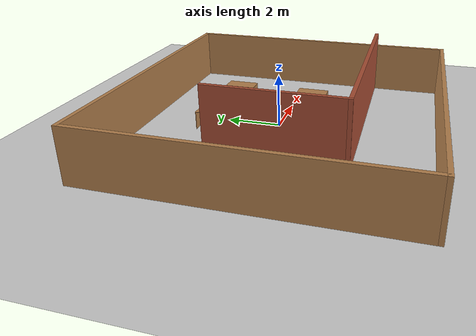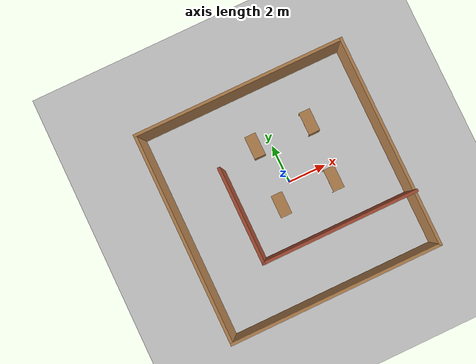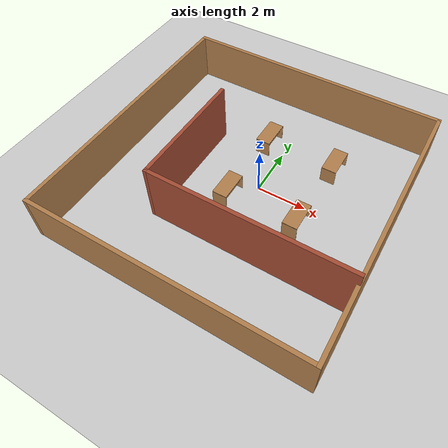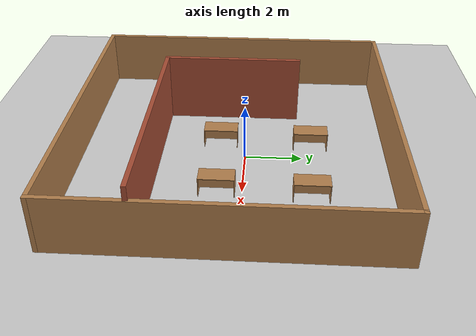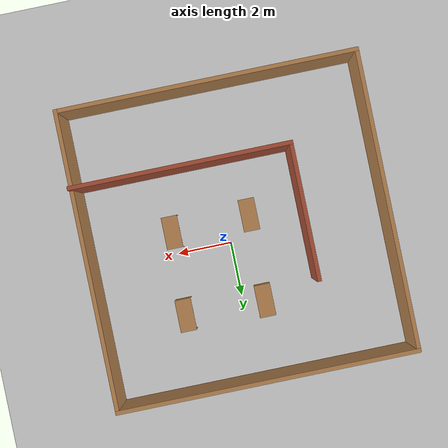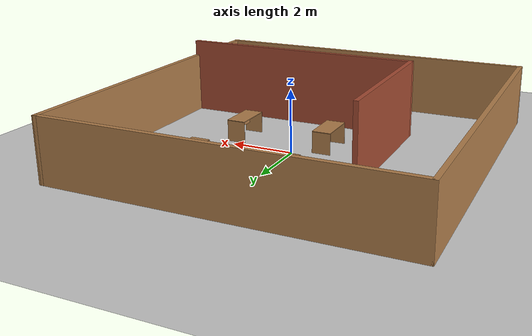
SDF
<sdf version="1.7">
 <world name="default">
  <light name="sun" type="directional">
   <pose>0 0 10 0 -0 0</pose>
   <diffuse>0.8 0.8 0.8 1</diffuse>
   <specular>0.1 0.1 0.1 1</specular>
   <attenuation>
    <range>1000</range>
    <constant>0.9</constant>
    <linear>0.01</linear>
    <quadratic>0.001</quadratic>
   </attenuation>
   <direction>-0.5 0.5 -1</direction>
   <spot><inner_angle>0</inner_angle><outer_angle>0</outer_angle><falloff>0</falloff></spot>
  </light>
  <model name="ground_plane">
   <static>1</static>
   <link name="link">
    <collision name="collision">
     <geometry><plane><normal>0 0 1</normal><size>100 100</size></plane></geometry>
     <surface><friction><ode><mu>100</mu><mu2>50</mu2></ode></friction></surface>
    </collision>
    <visual name="visual">
     <cast_shadows>0</cast_shadows>
     <geometry><plane><normal>0 0 1</normal><size>100 100</size></plane></geometry>
     <material>
      <script><uri>file://media/materials/scripts/gazebo.material</uri><name>Gazebo/Grey</name></script>
     </material>
    </visual>
   </link>
  </model>
  <gravity>0 0 -9.8</gravity>
  <magnetic_field>6e-06 2.3e-05 -4.2e-05</magnetic_field>
  <atmosphere type="adiabatic"/>
  <physics name="default_physics" default="0" type="ode">
   <max_step_size>0.001</max_step_size>
   <real_time_factor>1</real_time_factor>
   <real_time_update_rate>1000</real_time_update_rate>
  </physics>
  <scene><ambient>0.4 0.4 0.4 1</ambient><background>0.7 0.7 0.7 1</background><shadows>1</shadows></scene>
  <spherical_coordinates>
   <surface_model>EARTH_WGS84</surface_model>
   <latitude_deg>0</latitude_deg>
   <longitude_deg>0</longitude_deg>
   <elevation>0</elevation>
   <heading_deg>0</heading_deg>
  </spherical_coordinates>
  <model name="Untitled">
   <model name="Empty_World">
    <link name="Wall_6">
     <pose>0 5.425 0 0 -0 0</pose>
     <visual name="Wall_6_Visual">
      <pose>0 0 1 0 -0 0</pose>
      <geometry><box><size>11 0.15 2</size></box></geometry>
      <material>
       <script><uri>file://media/materials/scripts/gazebo.material</uri><name>Gazebo/Wood</name></script>
       <ambient>1 1 1 1</ambient>
       <diffuse>1 1 1 1</diffuse>
       <specular>0.2 0.2 0.2 1</specular>
       <emissive>0 0 0 1</emissive>
       <shader type="pixel"/>
      </material>
      <meta><layer>0</layer></meta>
     </visual>
     <collision name="Wall_6_Collision">
      <pose>0 0 1 0 -0 0</pose>
      <geometry><box><size>11 0.15 2</size></box></geometry>
      <surface>
       <friction>
        <ode><mu>1</mu><mu2>1</mu2><fdir1>0 0 0</fdir1><slip1>0</slip1><slip2>0</slip2></ode>
        <torsional>
         <coefficient>1</coefficient>
         <patch_radius>0</patch_radius>
         <surface_radius>0</surface_radius>
         <use_patch_radius>1</use_patch_radius>
         <ode><slip>0</slip></ode>
        </torsional>
       </friction>
       <bounce><restitution_coefficient>0</restitution_coefficient><threshold>1e+06</threshold></bounce>
       <contact>
        <collide_without_contact>0</collide_without_contact>
        <collide_without_contact_bitmask>1</collide_without_contact_bitmask>
        <collide_bitmask>1</collide_bitmask>
        <ode>
         <soft_cfm>0</soft_cfm>
         <soft_erp>0.2</soft_erp>
         <kp>1e+13</kp>
         <kd>1</kd>
         <max_vel>0.01</max_vel>
         <min_depth>0</min_depth>
        </ode>
        <bullet>
         <split_impulse>1</split_impulse>
         <split_impulse_penetration_threshold>-0.01</split_impulse_penetration_threshold>
         <soft_cfm>0</soft_cfm>
         <soft_erp>0.2</soft_erp>
         <kp>1e+13</kp>
         <kd>1</kd>
        </bullet>
       </contact>
      </surface>
     </collision>
    </link>
    <link name="Wall_7">
     <pose>5.425 0 0 0 0 -1.5708</pose>
     <visual name="Wall_7_Visual">
      <pose>0 0 1 0 -0 0</pose>
      <geometry><box><size>11 0.15 2</size></box></geometry>
      <material>
       <script><uri>file://media/materials/scripts/gazebo.material</uri><name>Gazebo/Wood</name></script>
       <ambient>1 1 1 1</ambient>
       <diffuse>1 1 1 1</diffuse>
       <specular>0.2 0.2 0.2 1</specular>
       <emissive>0 0 0 1</emissive>
       <shader type="pixel"/>
      </material>
      <meta><layer>0</layer></meta>
     </visual>
     <collision name="Wall_7_Collision">
      <pose>0 0 1 0 -0 0</pose>
      <geometry><box><size>11 0.15 2</size></box></geometry>
      <surface>
       <friction>
        <ode><mu>1</mu><mu2>1</mu2><fdir1>0 0 0</fdir1><slip1>0</slip1><slip2>0</slip2></ode>
        <torsional>
         <coefficient>1</coefficient>
         <patch_radius>0</patch_radius>
         <surface_radius>0</surface_radius>
         <use_patch_radius>1</use_patch_radius>
         <ode><slip>0</slip></ode>
        </torsional>
       </friction>
       <bounce><restitution_coefficient>0</restitution_coefficient><threshold>1e+06</threshold></bounce>
       <contact>
        <collide_without_contact>0</collide_without_contact>
        <collide_without_contact_bitmask>1</collide_without_contact_bitmask>
        <collide_bitmask>1</collide_bitmask>
        <ode>
         <soft_cfm>0</soft_cfm>
         <soft_erp>0.2</soft_erp>
         <kp>1e+13</kp>
         <kd>1</kd>
         <max_vel>0.01</max_vel>
         <min_depth>0</min_depth>
        </ode>
        <bullet>
         <split_impulse>1</split_impulse>
         <split_impulse_penetration_threshold>-0.01</split_impulse_penetration_threshold>
         <soft_cfm>0</soft_cfm>
         <soft_erp>0.2</soft_erp>
         <kp>1e+13</kp>
         <kd>1</kd>
        </bullet>
       </contact>
      </surface>
     </collision>
    </link>
    <link name="Wall_8">
     <pose>0 -5.425 0 0 -0 3.14159</pose>
     <visual name="Wall_8_Visual">
      <pose>0 0 1 0 -0 0</pose>
      <geometry><box><size>11 0.15 2</size></box></geometry>
      <material>
       <script><uri>file://media/materials/scripts/gazebo.material</uri><name>Gazebo/Wood</name></script>
       <ambient>1 1 1 1</ambient>
       <diffuse>1 1 1 1</diffuse>
       <specular>0.2 0.2 0.2 1</specular>
       <emissive>0 0 0 1</emissive>
       <shader type="pixel"/>
      </material>
      <meta><layer>0</layer></meta>
     </visual>
     <collision name="Wall_8_Collision">
      <pose>0 0 1 0 -0 0</pose>
      <geometry><box><size>11 0.15 2</size></box></geometry>
      <surface>
       <friction>
        <ode><mu>1</mu><mu2>1</mu2><fdir1>0 0 0</fdir1><slip1>0</slip1><slip2>0</slip2></ode>
        <torsional>
         <coefficient>1</coefficient>
         <patch_radius>0</patch_radius>
         <surface_radius>0</surface_radius>
         <use_patch_radius>1</use_patch_radius>
         <ode><slip>0</slip></ode>
        </torsional>
       </friction>
       <bounce><restitution_coefficient>0</restitution_coefficient><threshold>1e+06</threshold></bounce>
       <contact>
        <collide_without_contact>0</collide_without_contact>
        <collide_without_contact_bitmask>1</collide_without_contact_bitmask>
        <collide_bitmask>1</collide_bitmask>
        <ode>
         <soft_cfm>0</soft_cfm>
         <soft_erp>0.2</soft_erp>
         <kp>1e+13</kp>
         <kd>1</kd>
         <max_vel>0.01</max_vel>
         <min_depth>0</min_depth>
        </ode>
        <bullet>
         <split_impulse>1</split_impulse>
         <split_impulse_penetration_threshold>-0.01</split_impulse_penetration_threshold>
         <soft_cfm>0</soft_cfm>
         <soft_erp>0.2</soft_erp>
         <kp>1e+13</kp>
         <kd>1</kd>
        </bullet>
       </contact>
      </surface>
     </collision>
    </link>
    <link name="Wall_9">
     <pose>-5.425 0 0 0 -0 1.5708</pose>
     <visual name="Wall_9_Visual">
      <pose>0 0 1 0 -0 0</pose>
      <geometry><box><size>11 0.15 2</size></box></geometry>
      <material>
       <script><uri>file://media/materials/scripts/gazebo.material</uri><name>Gazebo/Wood</name></script>
       <ambient>1 1 1 1</ambient>
       <diffuse>1 1 1 1</diffuse>
       <specular>0.2 0.2 0.2 1</specular>
       <emissive>0 0 0 1</emissive>
       <shader type="pixel"/>
      </material>
      <meta><layer>0</layer></meta>
     </visual>
     <collision name="Wall_9_Collision">
      <pose>0 0 1 0 -0 0</pose>
      <geometry><box><size>11 0.15 2</size></box></geometry>
      <surface>
       <friction>
        <ode><mu>1</mu><mu2>1</mu2><fdir1>0 0 0</fdir1><slip1>0</slip1><slip2>0</slip2></ode>
        <torsional>
         <coefficient>1</coefficient>
         <patch_radius>0</patch_radius>
         <surface_radius>0</surface_radius>
         <use_patch_radius>1</use_patch_radius>
         <ode><slip>0</slip></ode>
        </torsional>
       </friction>
       <bounce><restitution_coefficient>0</restitution_coefficient><threshold>1e+06</threshold></bounce>
       <contact>
        <collide_without_contact>0</collide_without_contact>
        <collide_without_contact_bitmask>1</collide_without_contact_bitmask>
        <collide_bitmask>1</collide_bitmask>
        <ode>
         <soft_cfm>0</soft_cfm>
         <soft_erp>0.2</soft_erp>
         <kp>1e+13</kp>
         <kd>1</kd>
         <max_vel>0.01</max_vel>
         <min_depth>0</min_depth>
        </ode>
        <bullet>
         <split_impulse>1</split_impulse>
         <split_impulse_penetration_threshold>-0.01</split_impulse_penetration_threshold>
         <soft_cfm>0</soft_cfm>
         <soft_erp>0.2</soft_erp>
         <kp>1e+13</kp>
         <kd>1</kd>
        </bullet>
       </contact>
      </surface>
     </collision>
    </link>
    <static>1</static>
   </model>
   <static>0</static>
   <pose>-0.312257 -0.39044 0 0 -0 0</pose>
  </model>
  <model name="empty_world2">
   <pose>1.16152 -0.597875 0 0 -0 0</pose>
   <link name="Wall_2">
    <collision name="Wall_2_Collision">
     <geometry><box><size>8 0.15 2.5</size></box></geometry>
     <pose>0 0 1.25 0 -0 0</pose>
    </collision>
    <visual name="Wall_2_Visual">
     <pose>0 0 1.25 0 -0 0</pose>
     <geometry><box><size>8 0.15 2.5</size></box></geometry>
     <material>
      <script><uri>file://media/materials/scripts/gazebo.material</uri><name>Gazebo/Bricks</name></script>
      <ambient>1 1 1 1</ambient>
     </material>
     <meta><layer>0</layer></meta>
    </visual>
    <pose>0 -2.425 0 0 -0 0</pose>
   </link>
   <link name="Wall_4">
    <collision name="Wall_4_Collision">
     <geometry><box><size>5 0.15 2.5</size></box></geometry>
     <pose>0 0 1.25 0 -0 0</pose>
    </collision>
    <visual name="Wall_4_Visual">
     <pose>0 0 1.25 0 -0 0</pose>
     <geometry><box><size>5 0.15 2.5</size></box></geometry>
     <material>
      <script><uri>file://media/materials/scripts/gazebo.material</uri><name>Gazebo/Bricks</name></script>
      <ambient>1 1 1 1</ambient>
     </material>
     <meta><layer>0</layer></meta>
    </visual>
    <pose>-3.925 -0 0 0 -0 1.5708</pose>
   </link>
   <static>1</static>
  </model>
  <model name="office_desk">
   <link name="link">
    <inertial>
     <mass>10</mass>
     <inertia><ixx>1</ixx><ixy>0</ixy><ixz>0</ixz><iyy>1</iyy><iyz>0</iyz><izz>1</izz></inertia>
    </inertial>
    <visual name="top_board">
     <pose>-0.3 0.6 0.69 0 -0 0</pose>
     <geometry><box><size>0.6 1.2 0.02</size></box></geometry>
     <material>
      <script>
       <uri>model://base_materials/wood/scripts/wood.material</uri>
       <name>base_materials/dark_wood</name>
      </script>
     </material>
    </visual>
    <collision name="collision_top_board">
     <pose>-0.3 0.6 0.69 0 -0 0</pose>
     <geometry><box><size>0.6 1.2 0.02</size></box></geometry>
    </collision>
    <visual name="left_board">
     <pose>-0.3 0.01 0.34 0 -0 0</pose>
     <geometry><box><size>0.6 0.02 0.68</size></box></geometry>
     <material>
      <script>
       <uri>model://base_materials/wood/scripts/wood.material</uri>
       <name>base_materials/dark_wood</name>
      </script>
     </material>
    </visual>
    <collision name="collision_left_board">
     <pose>-0.3 0.01 0.34 0 -0 0</pose>
     <geometry><box><size>0.6 0.02 0.68</size></box></geometry>
    </collision>
    <visual name="right_board">
     <pose>-0.3 1.19 0.34 0 -0 0</pose>
     <geometry><box><size>0.6 0.02 0.68</size></box></geometry>
     <material>
      <script>
       <uri>model://base_materials/wood/scripts/wood.material</uri>
       <name>base_materials/dark_wood</name>
      </script>
     </material>
    </visual>
    <collision name="collision_right_board">
     <pose>-0.3 1.19 0.34 0 -0 0</pose>
     <geometry><box><size>0.6 0.02 0.68</size></box></geometry>
    </collision>
    <visual name="center_board">
     <pose>-0.14 0.6 0.49 0 -0 0</pose>
     <geometry><box><size>0.02 1.16 0.4</size></box></geometry>
     <material>
      <script>
       <uri>model://base_materials/wood/scripts/wood.material</uri>
       <name>base_materials/dark_wood</name>
      </script>
     </material>
    </visual>
    <collision name="ollision_center_board">
     <pose>-0.14 0.6 0.49 0 -0 0</pose>
     <geometry><box><size>0.02 1.16 0.4</size></box></geometry>
    </collision>
    <velocity_decay><linear>0</linear><angular>0</angular></velocity_decay>
   </link>
   <static>1</static>
   <pose>2.46351 1.65757 0 0 -0 0</pose>
  </model>
  <model name="office_desk_clone">
   <link name="link">
    <inertial>
     <mass>10</mass>
     <inertia><ixx>1</ixx><ixy>0</ixy><ixz>0</ixz><iyy>1</iyy><iyz>0</iyz><izz>1</izz></inertia>
    </inertial>
    <visual name="top_board">
     <pose>-0.3 0.6 0.69 0 -0 0</pose>
     <geometry><box><size>0.6 1.2 0.02</size></box></geometry>
     <material>
      <script>
       <uri>model://base_materials/wood/scripts/wood.material</uri>
       <name>base_materials/dark_wood</name>
      </script>
     </material>
    </visual>
    <collision name="collision_top_board">
     <pose>-0.3 0.6 0.69 0 -0 0</pose>
     <geometry><box><size>0.6 1.2 0.02</size></box></geometry>
    </collision>
    <visual name="left_board">
     <pose>-0.3 0.01 0.34 0 -0 0</pose>
     <geometry><box><size>0.6 0.02 0.68</size></box></geometry>
     <material>
      <script>
       <uri>model://base_materials/wood/scripts/wood.material</uri>
       <name>base_materials/dark_wood</name>
      </script>
     </material>
    </visual>
    <collision name="collision_left_board">
     <pose>-0.3 0.01 0.34 0 -0 0</pose>
     <geometry><box><size>0.6 0.02 0.68</size></box></geometry>
    </collision>
    <visual name="right_board">
     <pose>-0.3 1.19 0.34 0 -0 0</pose>
     <geometry><box><size>0.6 0.02 0.68</size></box></geometry>
     <material>
      <script>
       <uri>model://base_materials/wood/scripts/wood.material</uri>
       <name>base_materials/dark_wood</name>
      </script>
     </material>
    </visual>
    <collision name="collision_right_board">
     <pose>-0.3 1.19 0.34 0 -0 0</pose>
     <geometry><box><size>0.6 0.02 0.68</size></box></geometry>
    </collision>
    <visual name="center_board">
     <pose>-0.14 0.6 0.49 0 -0 0</pose>
     <geometry><box><size>0.02 1.16 0.4</size></box></geometry>
     <material>
      <script>
       <uri>model://base_materials/wood/scripts/wood.material</uri>
       <name>base_materials/dark_wood</name>
      </script>
     </material>
    </visual>
    <collision name="ollision_center_board">
     <pose>-0.14 0.6 0.49 0 -0 0</pose>
     <geometry><box><size>0.02 1.16 0.4</size></box></geometry>
    </collision>
    <velocity_decay><linear>0</linear><angular>0</angular></velocity_decay>
   </link>
   <static>1</static>
   <pose>2.34027 -1.4257 0 0 -0 0</pose>
  </model>
  <model name="office_desk_clone_clone">
   <link name="link">
    <inertial>
     <mass>10</mass>
     <inertia><ixx>1</ixx><ixy>0</ixy><ixz>0</ixz><iyy>1</iyy><iyz>0</iyz><izz>1</izz></inertia>
    </inertial>
    <visual name="top_board">
     <pose>-0.3 0.6 0.69 0 -0 0</pose>
     <geometry><box><size>0.6 1.2 0.02</size></box></geometry>
     <material>
      <script>
       <uri>model://base_materials/wood/scripts/wood.material</uri>
       <name>base_materials/dark_wood</name>
      </script>
     </material>
    </visual>
    <collision name="collision_top_board">
     <pose>-0.3 0.6 0.69 0 -0 0</pose>
     <geometry><box><size>0.6 1.2 0.02</size></box></geometry>
    </collision>
    <visual name="left_board">
     <pose>-0.3 0.01 0.34 0 -0 0</pose>
     <geometry><box><size>0.6 0.02 0.68</size></box></geometry>
     <material>
      <script>
       <uri>model://base_materials/wood/scripts/wood.material</uri>
       <name>base_materials/dark_wood</name>
      </script>
     </material>
    </visual>
    <collision name="collision_left_board">
     <pose>-0.3 0.01 0.34 0 -0 0</pose>
     <geometry><box><size>0.6 0.02 0.68</size></box></geometry>
    </collision>
    <visual name="right_board">
     <pose>-0.3 1.19 0.34 0 -0 0</pose>
     <geometry><box><size>0.6 0.02 0.68</size></box></geometry>
     <material>
      <script>
       <uri>model://base_materials/wood/scripts/wood.material</uri>
       <name>base_materials/dark_wood</name>
      </script>
     </material>
    </visual>
    <collision name="collision_right_board">
     <pose>-0.3 1.19 0.34 0 -0 0</pose>
     <geometry><box><size>0.6 0.02 0.68</size></box></geometry>
    </collision>
    <visual name="center_board">
     <pose>-0.14 0.6 0.49 0 -0 0</pose>
     <geometry><box><size>0.02 1.16 0.4</size></box></geometry>
     <material>
      <script>
       <uri>model://base_materials/wood/scripts/wood.material</uri>
       <name>base_materials/dark_wood</name>
      </script>
     </material>
    </visual>
    <collision name="ollision_center_board">
     <pose>-0.14 0.6 0.49 0 -0 0</pose>
     <geometry><box><size>0.02 1.16 0.4</size></box></geometry>
    </collision>
    <velocity_decay><linear>0</linear><angular>0</angular></velocity_decay>
   </link>
   <static>1</static>
   <pose>-0.496511 1.71918 0 0 -0 0</pose>
  </model>
  <model name="office_desk_clone_clone_0">
   <link name="link">
    <inertial>
     <mass>10</mass>
     <inertia><ixx>1</ixx><ixy>0</ixy><ixz>0</ixz><iyy>1</iyy><iyz>0</iyz><izz>1</izz></inertia>
    </inertial>
    <visual name="top_board">
     <pose>-0.3 0.6 0.69 0 -0 0</pose>
     <geometry><box><size>0.6 1.2 0.02</size></box></geometry>
     <material>
      <script>
       <uri>model://base_materials/wood/scripts/wood.material</uri>
       <name>base_materials/dark_wood</name>
      </script>
     </material>
    </visual>
    <collision name="collision_top_board">
     <pose>-0.3 0.6 0.69 0 -0 0</pose>
     <geometry><box><size>0.6 1.2 0.02</size></box></geometry>
    </collision>
    <visual name="left_board">
     <pose>-0.3 0.01 0.34 0 -0 0</pose>
     <geometry><box><size>0.6 0.02 0.68</size></box></geometry>
     <material>
      <script>
       <uri>model://base_materials/wood/scripts/wood.material</uri>
       <name>base_materials/dark_wood</name>
      </script>
     </material>
    </visual>
    <collision name="collision_left_board">
     <pose>-0.3 0.01 0.34 0 -0 0</pose>
     <geometry><box><size>0.6 0.02 0.68</size></box></geometry>
    </collision>
    <visual name="right_board">
     <pose>-0.3 1.19 0.34 0 -0 0</pose>
     <geometry><box><size>0.6 0.02 0.68</size></box></geometry>
     <material>
      <script>
       <uri>model://base_materials/wood/scripts/wood.material</uri>
       <name>base_materials/dark_wood</name>
      </script>
     </material>
    </visual>
    <collision name="collision_right_board">
     <pose>-0.3 1.19 0.34 0 -0 0</pose>
     <geometry><box><size>0.6 0.02 0.68</size></box></geometry>
    </collision>
    <visual name="center_board">
     <pose>-0.14 0.6 0.49 0 -0 0</pose>
     <geometry><box><size>0.02 1.16 0.4</size></box></geometry>
     <material>
      <script>
       <uri>model://base_materials/wood/scripts/wood.material</uri>
       <name>base_materials/dark_wood</name>
      </script>
     </material>
    </visual>
    <collision name="ollision_center_board">
     <pose>-0.14 0.6 0.49 0 -0 0</pose>
     <geometry><box><size>0.02 1.16 0.4</size></box></geometry>
    </collision>
    <velocity_decay><linear>0</linear><angular>0</angular></velocity_decay>
   </link>
   <static>1</static>
   <pose>-0.55813 -1.48757 0 0 -0 0</pose>
  </model>
 </world>
</sdf>
